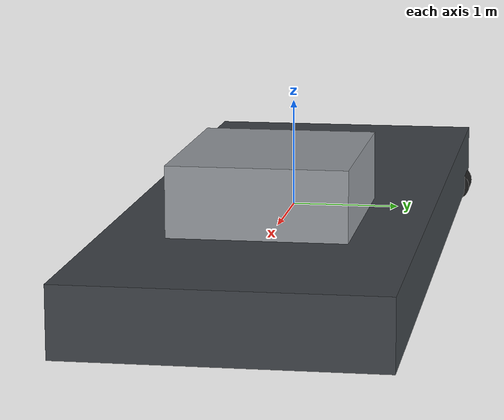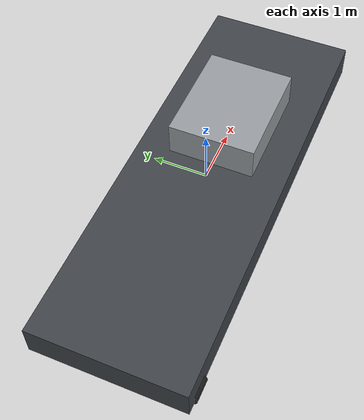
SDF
<sdf version="1.9">
  <model name="cusv">
    <link name="base_link">
      <inertial>
        <pose>0 0 -0.45 0 0 0</pose>
        <mass>7700.0</mass>
        <inertia>
          <ixx>5281.3</ixx>
          <ixy>0</ixy>
          <ixz>0</ixz>
          <iyy>46097.3</iyy>
          <iyz>0</iyz>
          <izz>41317.3</izz>
        </inertia>
      </inertial>

      <collision name="hull_collision">
        <pose>0 0 -0.2 0 0 0</pose>
        <geometry>
          <box><size>8.0 2.8 0.625</size></box>
        </geometry>
      </collision>

      <visual name="hull_visual">
        <pose>0 0 -0.2 0 0 0</pose>
        <geometry>
          <box><size>8.0 2.8 0.625</size></box>
        </geometry>
        <material>
          <diffuse>0.25 0.27 0.29 1</diffuse>
          <ambient>0.2 0.22 0.24 1</ambient>
          <specular>0.4 0.4 0.4 1</specular>
        </material>
      </visual>
      <!-- small deckhouse, purely cosmetic, for visual orientation -->
      <visual name="deckhouse_visual">
        <pose>1.2 0 0.35 0 0 0</pose>
        <geometry>
          <box><size>2.0 1.6 0.8</size></box>
        </geometry>
        <material>
          <diffuse>0.6 0.62 0.64 1</diffuse>
          <ambient>0.5 0.52 0.54 1</ambient>
          <specular>0.4 0.4 0.4 1</specular>
        </material>
      </visual>
    </link>

    <link name="motor_stbd_link">
      <pose degrees="true">-3.6 -1.3 -0.45 -90 0 90</pose>
      <inertial>
        <mass>15.0</mass>
        <inertia>
          <ixx>0.5</ixx>
          <ixy>0</ixy>
          <ixz>0</ixz>
          <iyy>0.5</iyy>
          <iyz>0</iyz>
          <izz>0.5</izz>
        </inertia>
      </inertial>
      <visual name="thruster_visual">
        <geometry>
          <cylinder><radius>0.15</radius><length>0.4</length></cylinder>
        </geometry>
        <material>
          <diffuse>0.1 0.1 0.1 1</diffuse>
          <ambient>0.1 0.1 0.1 1</ambient>
        </material>
      </visual>
    </link>
    <joint name="motor_stbd_joint" type="revolute">
      <parent>base_link</parent>
      <child>motor_stbd_link</child>
      <axis>
        <xyz>0 0 -1</xyz>
        <limit>
          <lower>-1e16</lower>
          <upper>1e16</upper>
        </limit>
        <dynamics>
          <damping>0.05</damping>
        </dynamics>
      </axis>
    </joint>

    <link name="motor_port_link">
      <!-- Same fix, same reasoning as motor_stbd_link above. -->
      <pose degrees="true">-3.6 1.3 -0.45 -90 0 90</pose>
      <inertial>
        <mass>15.0</mass>
        <inertia>
          <ixx>0.5</ixx>
          <ixy>0</ixy>
          <ixz>0</ixz>
          <iyy>0.5</iyy>
          <iyz>0</iyz>
          <izz>0.5</izz>
        </inertia>
      </inertial>
      <visual name="thruster_visual">
        <geometry>
          <cylinder><radius>0.15</radius><length>0.4</length></cylinder>
        </geometry>
        <material>
          <diffuse>0.1 0.1 0.1 1</diffuse>
          <ambient>0.1 0.1 0.1 1</ambient>
        </material>
      </visual>
    </link>
    <joint name="motor_port_joint" type="revolute">
      <parent>base_link</parent>
      <child>motor_port_link</child>
      <axis>
        <xyz>0 0 -1</xyz>
        <limit>
          <lower>-1e16</lower>
          <upper>1e16</upper>
        </limit>
        <dynamics>
          <damping>0.05</damping>
        </dynamics>
      </axis>
    </joint>

    <!-- sensors -->
    <link name="imu_link">
      <inertial>
        <pose>0 0 0 0 0 0</pose>
        <mass>0.1</mass>
        <inertia>
          <ixx>0.0001</ixx>
          <ixy>0</ixy>
          <ixz>0</ixz>
          <iyy>0.0001</iyy>
          <iyz>0</iyz>
          <izz>0.0001</izz>
        </inertia>
      </inertial>
      <sensor name="imu_sensor" type="imu">
        <pose degrees="true">0 0 0 180 0 0</pose>
        <always_on>1</always_on>
        <update_rate>1000.0</update_rate>
      </sensor>
      <sensor name="navsat_sensor" type="navsat">
        <always_on>1</always_on>
        <update_rate>10.0</update_rate>
        <topic>navsat</topic>
      </sensor>
    </link>
    <joint name="imu_joint" type="revolute">
      <child>imu_link</child>
      <parent>base_link</parent>
      <axis>
        <xyz>0 0 1</xyz>
        <limit>
          <lower>0</lower>
          <upper>0</upper>
        </limit>
        <dynamics>
          <damping>1.0</damping>
        </dynamics>
      </axis>
    </joint>

    <!-- plugins -->
    <plugin name="gz::sim::systems::JointStatePublisher"
      filename="gz-sim-joint-state-publisher-system">
    </plugin>
    <plugin name="gz::sim::systems::OdometryPublisher"
      filename="gz-sim-odometry-publisher-system">
      <odom_frame>odom</odom_frame>
      <robot_base_frame>base_link</robot_base_frame>
      <dimensions>3</dimensions>
    </plugin>

    <plugin name="gz::sim::systems::Thruster"
      filename="gz-sim-thruster-system">
      <namespace>cusv</namespace>
      <joint_name>motor_port_joint</joint_name>
      <thrust_coefficient>-0.02</thrust_coefficient>
      <fluid_density>1025</fluid_density>
      <propeller_diameter>0.3</propeller_diameter>
      <velocity_control>0</velocity_control>
      <use_angvel_cmd>0</use_angvel_cmd>
    </plugin>

    <plugin name="gz::sim::systems::Thruster"
      filename="gz-sim-thruster-system">
      <namespace>cusv</namespace>
      <joint_name>motor_stbd_joint</joint_name>
      <thrust_coefficient>0.02</thrust_coefficient>
      <fluid_density>1025</fluid_density>
      <propeller_diameter>0.3</propeller_diameter>
      <velocity_control>0</velocity_control>
      <use_angvel_cmd>0</use_angvel_cmd>
    </plugin>

    <!-- Linear+quadratic drag, BlueBoat's live-tuned coefficients scaled
         by mass_ratio^(2/3) ~= 40.4 (see header comment for derivation
         and sanity check). -->
    <plugin filename="gz-sim-hydrodynamics-system"
            name="gz::sim::systems::Hydrodynamics">
      <link_name>base_link</link_name>
      <water_density>1000.0</water_density>
      <xDotU>0</xDotU>
      <yDotV>0</yDotV>
      <zDotW>0</zDotW>
      <kDotP>0</kDotP>
      <mDotQ>0</mDotQ>
      <nDotR>0</nDotR>
      <xU>-808</xU>
      <yV>-1615</yV>
      <zW>-1615</zW>
      <kP>-24200</kP>
      <mQ>-24200</mQ>
      <nR>-32300</nR>
      <xUabsU>-1010</xUabsU>
      <yVabsV>-2423</yVabsV>
      <zWabsW>-2423</zWabsW>
      <kPabsP>-40400</kPabsP>
      <mQabsQ>-40400</mQabsQ>
      <nRabsR>-48500</nRabsR>
    </plugin>

    <!-- ardupilot plugin -->
    <plugin name="ArduPilotPlugin"
      filename="ArduPilotPlugin">
      <fdm_addr>127.0.0.1</fdm_addr>
      <fdm_port_in>9100</fdm_port_in>
      <connectionTimeoutMaxCount>5</connectionTimeoutMaxCount>
      <lock_step>1</lock_step>
      <gazeboXYZToNED degrees="true">0 0 0 180 0 90</gazeboXYZToNED>
      <modelXYZToAirplaneXForwardZDown degrees="true">0 0 0 180 0 0</modelXYZToAirplaneXForwardZDown>
      <imuName>imu_link::imu_sensor</imuName>

      <control channel="0">
        <jointName>motor_port_joint</jointName>
        <multiplier>8000</multiplier>
        <offset>-0.5</offset>
        <servo_min>1000</servo_min>
        <servo_max>2000</servo_max>
        <type>COMMAND</type>
        <cmd_topic>/model/cusv/joint/motor_port_joint/cmd_thrust</cmd_topic>
      </control>

      <!--
        stbd motor — SERVO3_FUNCTION 74 (ThrottleRight)
      -->
      <control channel="2">
        <jointName>motor_stbd_joint</jointName>
        <multiplier>8000</multiplier>
        <offset>-0.5</offset>
        <servo_min>1000</servo_min>
        <servo_max>2000</servo_max>
        <type>COMMAND</type>
        <cmd_topic>/model/cusv/joint/motor_stbd_joint/cmd_thrust</cmd_topic>
      </control>
    </plugin>

  </model>
</sdf>
